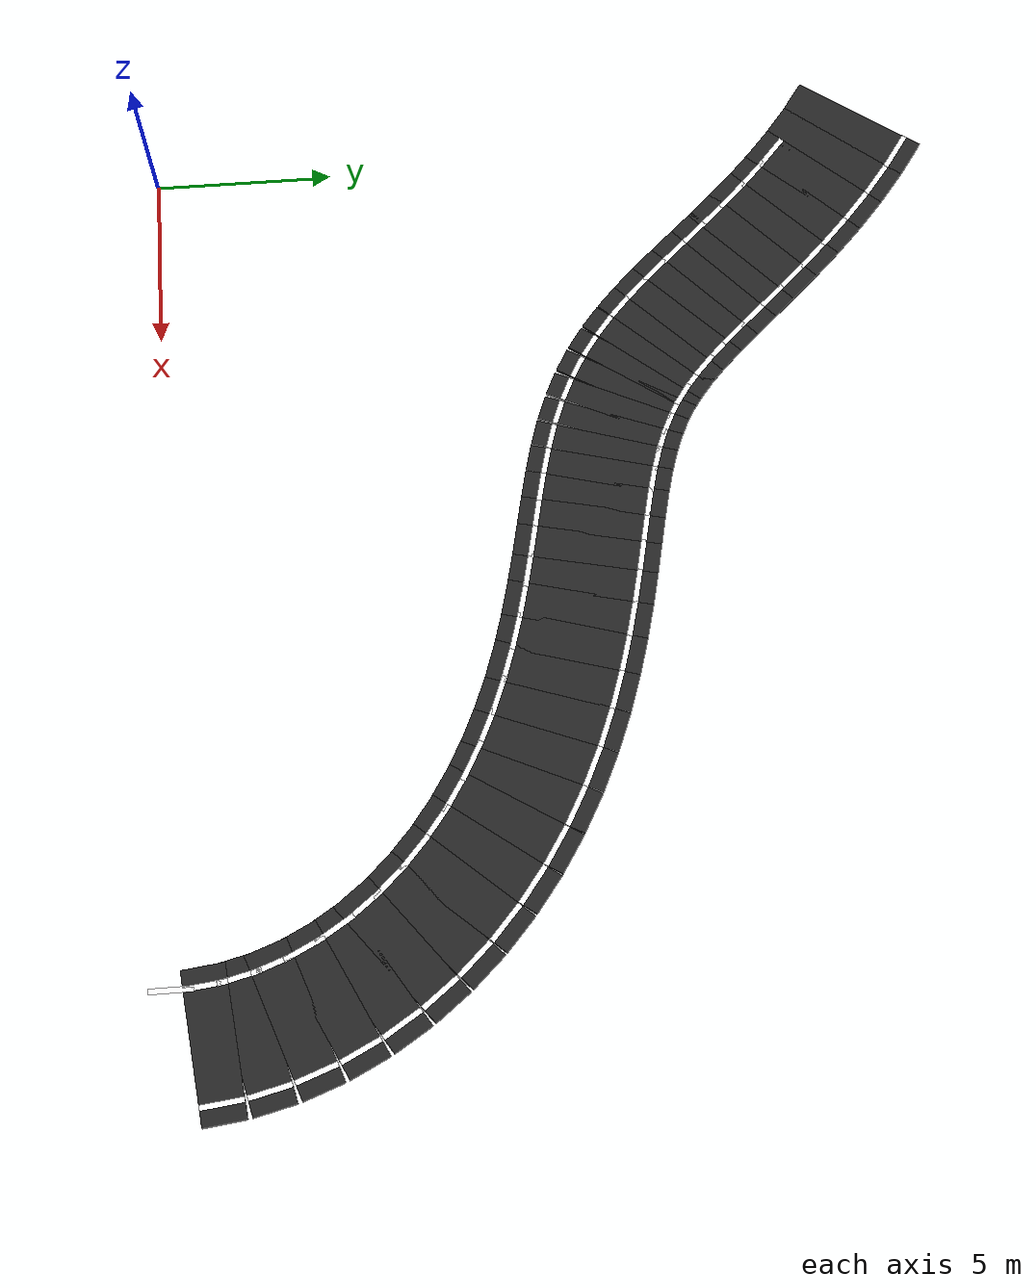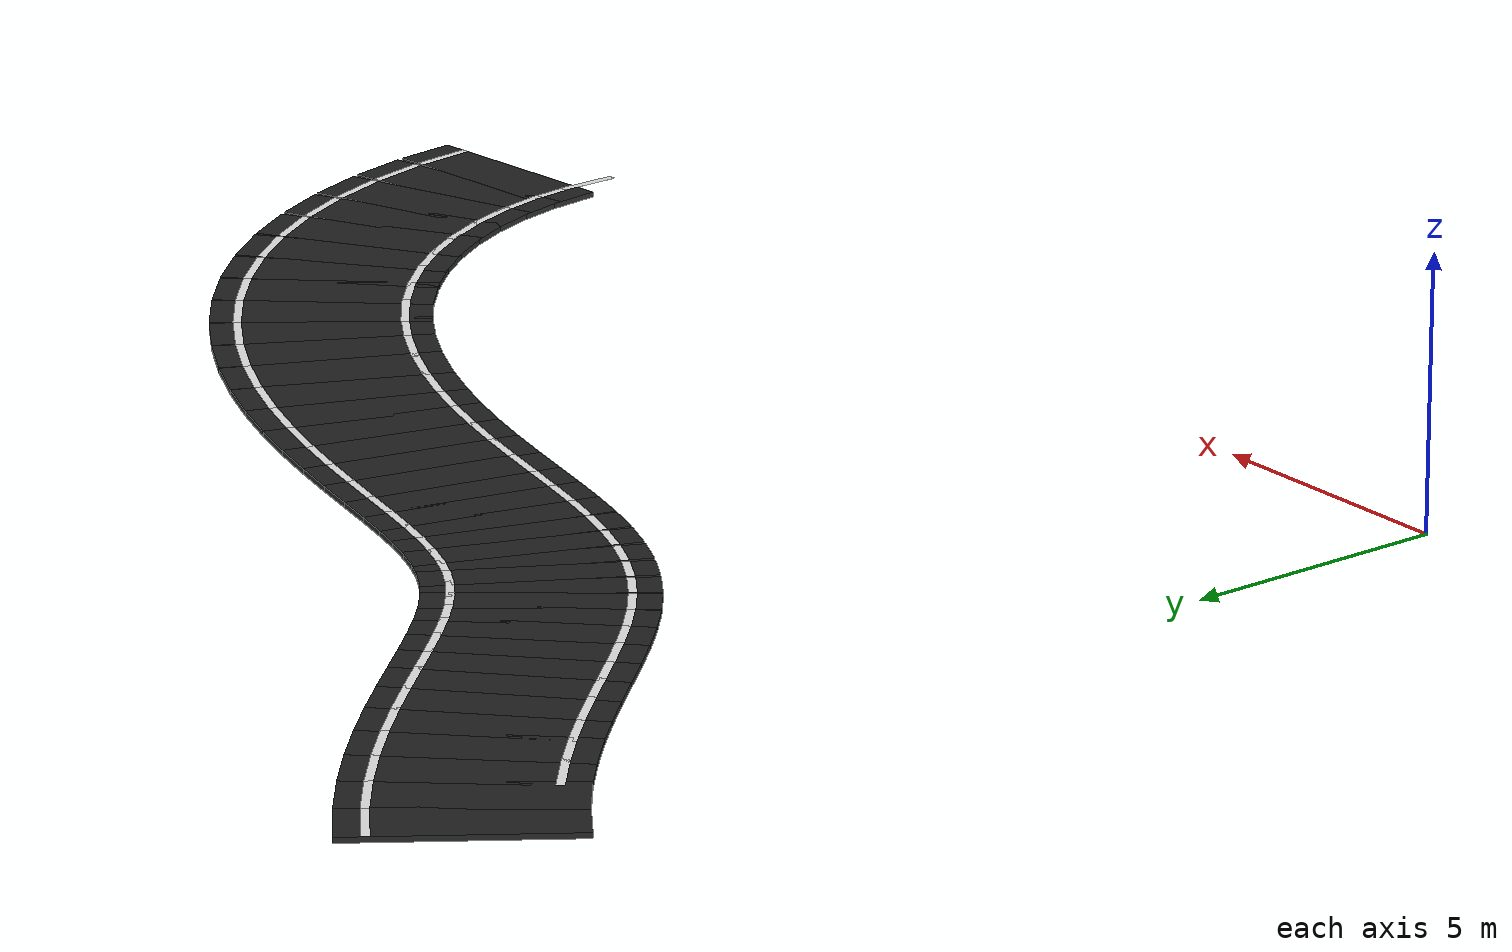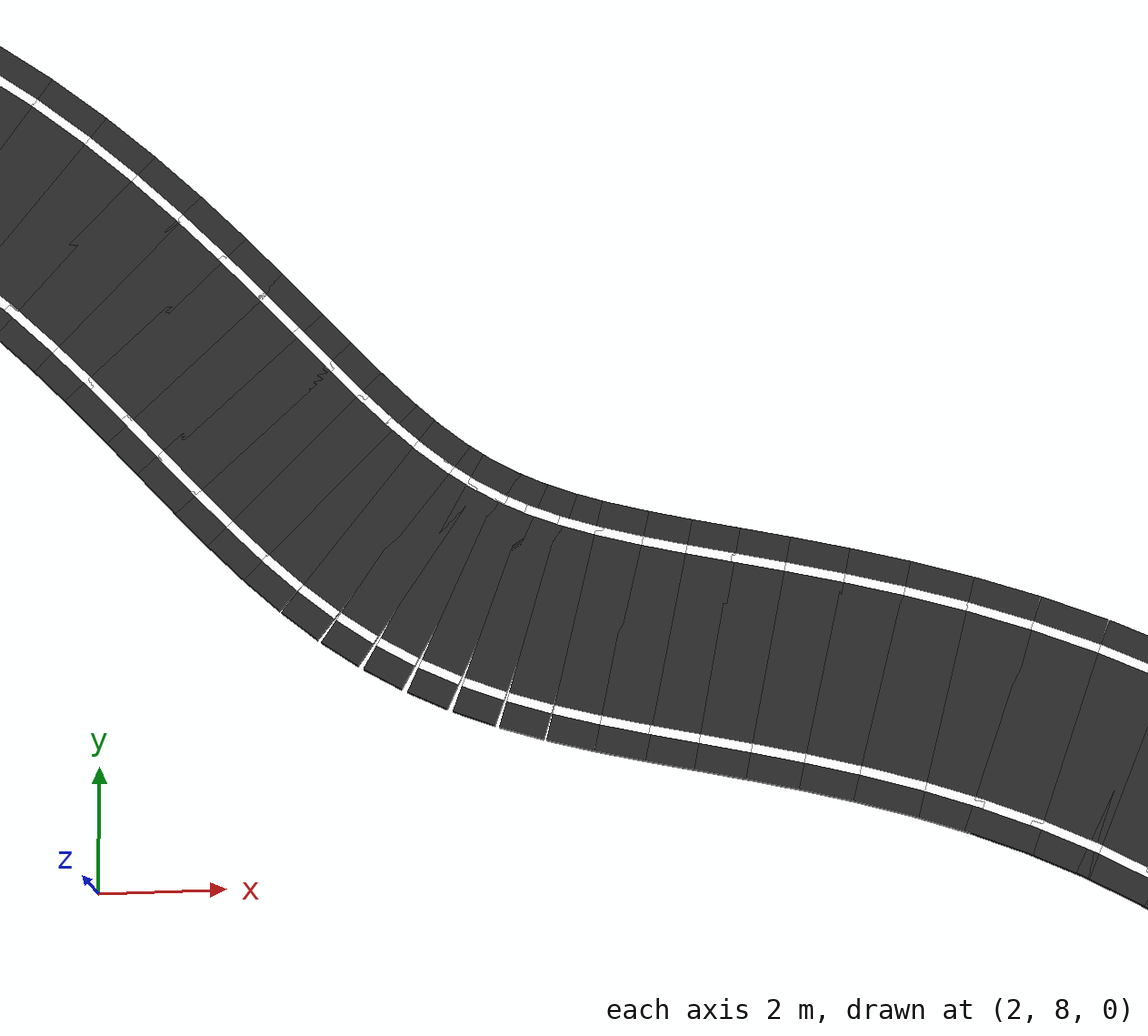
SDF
<sdf version="1.9">
 <world name="curved_race_track">
  <model name="race_track">
   <static>true</static>
   <link name="left_line_0">
    <pose>23.5 9.184850993605148e-17 0.101 0 0 1.5707963267948966</pose>
    <visual name="v">
     <geometry><box><size>1.1517413086948718 0.15 0.001</size></box></geometry>
     <material><ambient>1 1 1 1</ambient><emissive>0.3 0.3 0.3 1</emissive></material>
    </visual>
   </link>
   <link name="asphalt_1">
    <pose>24.93867884277719 1.0452403330434594 0.05 0 0 1.6878610084876453</pose>
    <visual name="v">
     <geometry><box><size>1.1545797828012336 4.0 0.1</size></box></geometry>
     <material><ambient>0.15 0.15 0.15 1</ambient><diffuse>0.15 0.15 0.15 1</diffuse></material>
    </visual>
    <collision name="c"><geometry><box><size>1.1545797828012336 4.0 0.1</size></box></geometry></collision>
   </link>
   <link name="left_line_1">
    <pose>23.448945215197284 0.8700441034675652 0.101 0 0 1.6878610084876453</pose>
    <visual name="v">
     <geometry><box><size>1.1545797828012336 0.15 0.001</size></box></geometry>
     <material><ambient>1 1 1 1</ambient><emissive>0.3 0.3 0.3 1</emissive></material>
    </visual>
   </link>
   <link name="right_line_1">
    <pose>26.428412470357095 1.2204365626193536 0.101 0 0 1.6878610084876453</pose>
    <visual name="v">
     <geometry><box><size>1.1545797828012336 0.15 0.001</size></box></geometry>
     <material><ambient>1 1 1 1</ambient><emissive>0.3 0.3 0.3 1</emissive></material>
    </visual>
   </link>
   <link name="asphalt_2">
    <pose>24.755788203260053 2.0788016167025125 0.05 0 0 1.8036160374220453</pose>
    <visual name="v">
     <geometry><box><size>1.1599233334616188 4.0 0.1</size></box></geometry>
     <material><ambient>0.15 0.15 0.15 1</ambient><diffuse>0.15 0.15 0.15 1</diffuse></material>
    </visual>
    <collision name="c"><geometry><box><size>1.1599233334616188 4.0 0.1</size></box></geometry></collision>
   </link>
   <link name="left_line_2">
    <pose>23.29625866148592 1.7327185100813123 0.101 0 0 1.8036160374220453</pose>
    <visual name="v">
     <geometry><box><size>1.1599233334616188 0.15 0.001</size></box></geometry>
     <material><ambient>1 1 1 1</ambient><emissive>0.3 0.3 0.3 1</emissive></material>
    </visual>
   </link>
   <link name="right_line_2">
    <pose>26.215317745034188 2.4248847233237125 0.101 0 0 1.8036160374220453</pose>
    <visual name="v">
     <geometry><box><size>1.1599233334616188 0.15 0.001</size></box></geometry>
     <material><ambient>1 1 1 1</ambient><emissive>0.3 0.3 0.3 1</emissive></material>
    </visual>
   </link>
   <link name="asphalt_3">
    <pose>24.454518629220797 3.0893241386282364 0.05 0 0 1.9168424924672245</pose>
    <visual name="v">
     <geometry><box><size>1.1671380173277104 4.0 0.1</size></box></geometry>
     <material><ambient>0.15 0.15 0.15 1</ambient><diffuse>0.15 0.15 0.15 1</diffuse></material>
    </visual>
    <collision name="c"><geometry><box><size>1.1671380173277104 4.0 0.1</size></box></geometry></collision>
   </link>
   <link name="left_line_3">
    <pose>23.043436937324422 2.580552619383238 0.101 0 0 1.9168424924672245</pose>
    <visual name="v">
     <geometry><box><size>1.1671380173277104 0.15 0.001</size></box></geometry>
     <material><ambient>1 1 1 1</ambient><emissive>0.3 0.3 0.3 1</emissive></material>
    </visual>
   </link>
   <link name="right_line_3">
    <pose>25.86560032111717 3.598095657873235 0.101 0 0 1.9168424924672245</pose>
    <visual name="v">
     <geometry><box><size>1.1671380173277104 0.15 0.001</size></box></geometry>
     <material><ambient>1 1 1 1</ambient><emissive>0.3 0.3 0.3 1</emissive></material>
    </visual>
   </link>
   <link name="asphalt_4">
    <pose>24.0400953103184 4.066077768171364 0.05 0 0 2.0264843342093304</pose>
    <visual name="v">
     <geometry><box><size>1.1753487668691223 4.0 0.1</size></box></geometry>
     <material><ambient>0.15 0.15 0.15 1</ambient><diffuse>0.15 0.15 0.15 1</diffuse></material>
    </visual>
    <collision name="c"><geometry><box><size>1.1753487668691223 4.0 0.1</size></box></geometry></collision>
   </link>
   <link name="left_line_4">
    <pose>22.693157616906884 3.4059574381804865 0.101 0 0 2.0264843342093304</pose>
    <visual name="v">
     <geometry><box><size>1.1753487668691223 0.15 0.001</size></box></geometry>
     <material><ambient>1 1 1 1</ambient><emissive>0.3 0.3 0.3 1</emissive></material>
    </visual>
   </link>
   <link name="right_line_4">
    <pose>25.387033003729915 4.726198098162241 0.101 0 0 2.0264843342093304</pose>
    <visual name="v">
     <geometry><box><size>1.1753487668691223 0.15 0.001</size></box></geometry>
     <material><ambient>1 1 1 1</ambient><emissive>0.3 0.3 0.3 1</emissive></material>
    </visual>
   </link>
   <link name="asphalt_5">
    <pose>23.51964217467976 4.999254272359171 0.05 0 0 2.1316897090092386</pose>
    <visual name="v">
     <geometry><box><size>1.1835150671737338 4.0 0.1</size></box></geometry>
     <material><ambient>0.15 0.15 0.15 1</ambient><diffuse>0.15 0.15 0.15 1</diffuse></material>
    </visual>
    <collision name="c"><geometry><box><size>1.1835150671737338 4.0 0.1</size></box></geometry></collision>
   </link>
   <link name="left_line_5">
    <pose>22.249471843683427 4.201339909625511 0.101 0 0 2.1316897090092386</pose>
    <visual name="v">
     <geometry><box><size>1.1835150671737338 0.15 0.001</size></box></geometry>
     <material><ambient>1 1 1 1</ambient><emissive>0.3 0.3 0.3 1</emissive></material>
    </visual>
   </link>
   <link name="right_line_5">
    <pose>24.789812505676093 5.797168635092832 0.101 0 0 2.1316897090092386</pose>
    <visual name="v">
     <geometry><box><size>1.1835150671737338 0.15 0.001</size></box></geometry>
     <material><ambient>1 1 1 1</ambient><emissive>0.3 0.3 0.3 1</emissive></material>
    </visual>
   </link>
   <link name="asphalt_6">
    <pose>22.901996910129775 5.880233371797846 0.05 0 0 2.2318184825836376</pose>
    <visual name="v">
     <geometry><box><size>1.190511819055715 4.0 0.1</size></box></geometry>
     <material><ambient>0.15 0.15 0.15 1</ambient><diffuse>0.15 0.15 0.15 1</diffuse></material>
    </visual>
    <collision name="c"><geometry><box><size>1.190511819055715 4.0 0.1</size></box></geometry></collision>
   </link>
   <link name="left_line_6">
    <pose>21.717949233168476 4.959347331789338 0.101 0 0 2.2318184825836376</pose>
    <visual name="v">
     <geometry><box><size>1.190511819055715 0.15 0.001</size></box></geometry>
     <material><ambient>1 1 1 1</ambient><emissive>0.3 0.3 0.3 1</emissive></material>
    </visual>
   </link>
   <link name="right_line_6">
    <pose>24.086044587091074 6.801119411806354 0.101 0 0 2.2318184825836376</pose>
    <visual name="v">
     <geometry><box><size>1.190511819055715 0.15 0.001</size></box></geometry>
     <material><ambient>1 1 1 1</ambient><emissive>0.3 0.3 0.3 1</emissive></material>
    </visual>
   </link>
   <link name="asphalt_7">
    <pose>22.19748201854685 6.701814944752323 0.05 0 0 2.326421200263377</pose>
    <visual name="v">
     <geometry><box><size>1.1952063372059136 4.0 0.1</size></box></geometry>
     <material><ambient>0.15 0.15 0.15 1</ambient><diffuse>0.15 0.15 0.15 1</diffuse></material>
    </visual>
    <collision name="c"><geometry><box><size>1.1952063372059136 4.0 0.1</size></box></geometry></collision>
   </link>
   <link name="left_line_7">
    <pose>21.105717245066373 5.673199526149663 0.101 0 0 2.326421200263377</pose>
    <visual name="v">
     <geometry><box><size>1.1952063372059136 0.15 0.001</size></box></geometry>
     <material><ambient>1 1 1 1</ambient><emissive>0.3 0.3 0.3 1</emissive></material>
    </visual>
   </link>
   <link name="right_line_7">
    <pose>23.289246792027328 7.730430363354984 0.101 0 0 2.326421200263377</pose>
    <visual name="v">
     <geometry><box><size>1.1952063372059136 0.15 0.001</size></box></geometry>
     <material><ambient>1 1 1 1</ambient><emissive>0.3 0.3 0.3 1</emissive></material>
    </visual>
   </link>
   <link name="asphalt_8">
    <pose>21.417638223340855 7.458410741258788 0.05 0 0 2.415198938088985</pose>
    <visual name="v">
     <geometry><box><size>1.1965258177165006 4.0 0.1</size></box></geometry>
     <material><ambient>0.15 0.15 0.15 1</ambient><diffuse>0.15 0.15 0.15 1</diffuse></material>
    </visual>
    <collision name="c"><geometry><box><size>1.1965258177165006 4.0 0.1</size></box></geometry></collision>
   </link>
   <link name="left_line_8">
    <pose>20.421371233059197 6.337049031516955 0.101 0 0 2.415198938088985</pose>
    <visual name="v">
     <geometry><box><size>1.1965258177165006 0.15 0.001</size></box></geometry>
     <material><ambient>1 1 1 1</ambient><emissive>0.3 0.3 0.3 1</emissive></material>
    </visual>
   </link>
   <link name="right_line_8">
    <pose>22.413905213622513 8.579772451000622 0.101 0 0 2.415198938088985</pose>
    <visual name="v">
     <geometry><box><size>1.1965258177165006 0.15 0.001</size></box></geometry>
     <material><ambient>1 1 1 1</ambient><emissive>0.3 0.3 0.3 1</emissive></material>
    </visual>
   </link>
   <link name="asphalt_9">
    <pose>20.57492758514184 8.146190109942514 0.05 0 0 2.4979537496442656</pose>
    <visual name="v">
     <geometry><box><size>1.1935129791848818 4.0 0.1</size></box></geometry>
     <material><ambient>0.15 0.15 0.15 1</ambient><diffuse>0.15 0.15 0.15 1</diffuse></material>
    </visual>
    <collision name="c"><geometry><box><size>1.1935129791848818 4.0 0.1</size></box></geometry></collision>
   </link>
   <link name="left_line_9">
    <pose>19.674762239504048 6.946314136971644 0.101 0 0 2.4979537496442656</pose>
    <visual name="v">
     <geometry><box><size>1.1935129791848818 0.15 0.001</size></box></geometry>
     <material><ambient>1 1 1 1</ambient><emissive>0.3 0.3 0.3 1</emissive></material>
    </visual>
   </link>
   <link name="right_line_9">
    <pose>21.47509293077963 9.346066082913385 0.101 0 0 2.4979537496442656</pose>
    <visual name="v">
     <geometry><box><size>1.1935129791848818 0.15 0.001</size></box></geometry>
     <material><ambient>1 1 1 1</ambient><emissive>0.3 0.3 0.3 1</emissive></material>
    </visual>
   </link>
   <link name="asphalt_10">
    <pose>19.682414510580028 8.7631755362432 0.05 0 0 2.574537075790494</pose>
    <visual name="v">
     <geometry><box><size>1.1853701260313456 4.0 0.1</size></box></geometry>
     <material><ambient>0.15 0.15 0.15 1</ambient><diffuse>0.15 0.15 0.15 1</diffuse></material>
    </visual>
    <collision name="c"><geometry><box><size>1.1853701260313456 4.0 0.1</size></box></geometry></collision>
   </link>
   <link name="left_line_10">
    <pose>18.876688308791273 7.49794619428536 0.101 0 0 2.574537075790494</pose>
    <visual name="v">
     <geometry><box><size>1.1853701260313456 0.15 0.001</size></box></geometry>
     <material><ambient>1 1 1 1</ambient><emissive>0.3 0.3 0.3 1</emissive></material>
    </visual>
   </link>
   <link name="right_line_10">
    <pose>20.488140712368782 10.028404878201039 0.101 0 0 2.574537075790494</pose>
    <visual name="v">
     <geometry><box><size>1.1853701260313456 0.15 0.001</size></box></geometry>
     <material><ambient>1 1 1 1</ambient><emissive>0.3 0.3 0.3 1</emissive></material>
    </visual>
   </link>
   <link name="asphalt_11">
    <pose>18.75343344040603 9.309285205632204 0.05 0 0 2.6448003074046262</pose>
    <visual name="v">
     <geometry><box><size>1.1714934133066277 4.0 0.1</size></box></geometry>
     <material><ambient>0.15 0.15 0.15 1</ambient><diffuse>0.15 0.15 0.15 1</diffuse></material>
    </visual>
    <collision name="c"><geometry><box><size>1.1714934133066277 4.0 0.1</size></box></geometry></collision>
   </link>
   <link name="left_line_11">
    <pose>18.038521296456896 7.990611392123324 0.101 0 0 2.6448003074046262</pose>
    <visual name="v">
     <geometry><box><size>1.1714934133066277 0.15 0.001</size></box></geometry>
     <material><ambient>1 1 1 1</ambient><emissive>0.3 0.3 0.3 1</emissive></material>
    </visual>
   </link>
   <link name="right_line_11">
    <pose>19.468345584355166 10.627959019141084 0.101 0 0 2.6448003074046262</pose>
    <visual name="v">
     <geometry><box><size>1.1714934133066277 0.15 0.001</size></box></geometry>
     <material><ambient>1 1 1 1</ambient><emissive>0.3 0.3 0.3 1</emissive></material>
    </visual>
   </link>
   <link name="asphalt_12">
    <pose>17.801252359412082 9.786321299444317 0.05 0 0 2.708548881947828</pose>
    <visual name="v">
     <geometry><box><size>1.1514998059889057 4.0 0.1</size></box></geometry>
     <material><ambient>0.15 0.15 0.15 1</ambient><diffuse>0.15 0.15 0.15 1</diffuse></material>
    </visual>
    <collision name="c"><geometry><box><size>1.1514998059889057 4.0 0.1</size></box></geometry></collision>
   </link>
   <link name="left_line_12">
    <pose>17.171799032504463 8.42478227714458 0.101 0 0 2.708548881947828</pose>
    <visual name="v">
     <geometry><box><size>1.1514998059889057 0.15 0.001</size></box></geometry>
     <material><ambient>1 1 1 1</ambient><emissive>0.3 0.3 0.3 1</emissive></material>
    </visual>
   </link>
   <link name="right_line_12">
    <pose>18.4307056863197 11.147860321744055 0.101 0 0 2.708548881947828</pose>
    <visual name="v">
     <geometry><box><size>1.1514998059889057 0.15 0.001</size></box></geometry>
     <material><ambient>1 1 1 1</ambient><emissive>0.3 0.3 0.3 1</emissive></material>
    </visual>
   </link>
   <link name="asphalt_13">
    <pose>16.838741371798708 10.197904262218827 0.05 0 0 2.7654993891998405</pose>
    <visual name="v">
     <geometry><box><size>1.1252494421990376 4.0 0.1</size></box></geometry>
     <material><ambient>0.15 0.15 0.15 1</ambient><diffuse>0.15 0.15 0.15 1</diffuse></material>
    </visual>
    <collision name="c"><geometry><box><size>1.1252494421990376 4.0 0.1</size></box></geometry></collision>
   </link>
   <link name="left_line_13">
    <pose>16.287806970536273 8.802744312426116 0.101 0 0 2.7654993891998405</pose>
    <visual name="v">
     <geometry><box><size>1.1252494421990376 0.15 0.001</size></box></geometry>
     <material><ambient>1 1 1 1</ambient><emissive>0.3 0.3 0.3 1</emissive></material>
    </visual>
   </link>
   <link name="right_line_13">
    <pose>17.389675773061143 11.593064212011539 0.101 0 0 2.7654993891998405</pose>
    <visual name="v">
     <geometry><box><size>1.1252494421990376 0.15 0.001</size></box></geometry>
     <material><ambient>1 1 1 1</ambient><emissive>0.3 0.3 0.3 1</emissive></material>
    </visual>
   </link>
   <link name="asphalt_14">
    <pose>15.878055429048832 10.54935480497764 0.05 0 0 2.8152382774725226</pose>
    <visual name="v">
     <geometry><box><size>1.092866102675976 4.0 0.1</size></box></geometry>
     <material><ambient>0.15 0.15 0.15 1</ambient><diffuse>0.15 0.15 0.15 1</diffuse></material>
    </visual>
    <collision name="c"><geometry><box><size>1.092866102675976 4.0 0.1</size></box></geometry></collision>
   </link>
   <link name="left_line_14">
    <pose>15.39716747687417 9.12852871517873 0.101 0 0 2.8152382774725226</pose>
    <visual name="v">
     <geometry><box><size>1.092866102675976 0.15 0.001</size></box></geometry>
     <material><ambient>1 1 1 1</ambient><emissive>0.3 0.3 0.3 1</emissive></material>
    </visual>
   </link>
   <link name="right_line_14">
    <pose>16.358943381223494 11.970180894776549 0.101 0 0 2.8152382774725226</pose>
    <visual name="v">
     <geometry><box><size>1.092866102675976 0.15 0.001</size></box></geometry>
     <material><ambient>1 1 1 1</ambient><emissive>0.3 0.3 0.3 1</emissive></material>
    </visual>
   </link>
   <link name="asphalt_15">
    <pose>14.930339887498949 10.847526885842763 0.05 0 0 2.8571809337977716</pose>
    <visual name="v">
     <geometry><box><size>1.0547584072677971 4.0 0.1</size></box></geometry>
     <material><ambient>0.15 0.15 0.15 1</ambient><diffuse>0.15 0.15 0.15 1</diffuse></material>
    </visual>
    <collision name="c"><geometry><box><size>1.0547584072677971 4.0 0.1</size></box></geometry></collision>
   </link>
   <link name="left_line_15">
    <pose>14.509450608417962 9.407786556910255 0.101 0 0 2.8571809337977716</pose>
    <visual name="v">
     <geometry><box><size>1.0547584072677971 0.15 0.001</size></box></geometry>
     <material><ambient>1 1 1 1</ambient><emissive>0.3 0.3 0.3 1</emissive></material>
    </visual>
   </link>
   <link name="right_line_15">
    <pose>15.351229166579936 12.287267214775271 0.101 0 0 2.8571809337977716</pose>
    <visual name="v">
     <geometry><box><size>1.0547584072677971 0.15 0.001</size></box></geometry>
     <material><ambient>1 1 1 1</ambient><emissive>0.3 0.3 0.3 1</emissive></material>
    </visual>
   </link>
   <link name="asphalt_16">
    <pose>14.005466921194902 11.100596296345627 0.05 0 0 2.8905314485385714</pose>
    <visual name="v">
     <geometry><box><size>1.0116441791363924 4.0 0.1</size></box></geometry>
     <material><ambient>0.15 0.15 0.15 1</ambient><diffuse>0.15 0.15 0.15 1</diffuse></material>
    </visual>
    <collision name="c"><geometry><box><size>1.0116441791363924 4.0 0.1</size></box></geometry></collision>
   </link>
   <link name="left_line_16">
    <pose>13.632818869430034 9.647622301562565 0.101 0 0 2.8905314485385714</pose>
    <visual name="v">
     <geometry><box><size>1.0116441791363924 0.15 0.001</size></box></geometry>
     <material><ambient>1 1 1 1</ambient><emissive>0.3 0.3 0.3 1</emissive></material>
    </visual>
   </link>
   <link name="right_line_16">
    <pose>14.37811497295977 12.553570291128688 0.101 0 0 2.8905314485385714</pose>
    <visual name="v">
     <geometry><box><size>1.0116441791363924 0.15 0.001</size></box></geometry>
     <material><ambient>1 1 1 1</ambient><emissive>0.3 0.3 0.3 1</emissive></material>
    </visual>
   </link>
   <link name="asphalt_17">
    <pose>13.111809940610991 11.317810739755817 0.05 0 0 2.9142471013519193</pose>
    <visual name="v">
     <geometry><box><size>0.964579854375915 4.0 0.1</size></box></geometry>
     <material><ambient>0.15 0.15 0.15 1</ambient><diffuse>0.15 0.15 0.15 1</diffuse></material>
    </visual>
    <collision name="c"><geometry><box><size>0.964579854375915 4.0 0.1</size></box></geometry></collision>
   </link>
   <link name="left_line_17">
    <pose>12.773721675392794 9.856408562077903 0.101 0 0 2.9142471013519193</pose>
    <visual name="v">
     <geometry><box><size>0.964579854375915 0.15 0.001</size></box></geometry>
     <material><ambient>1 1 1 1</ambient><emissive>0.3 0.3 0.3 1</emissive></material>
    </visual>
   </link>
   <link name="right_line_17">
    <pose>13.449898205829188 12.779212917433732 0.101 0 0 2.9142471013519193</pose>
    <visual name="v">
     <geometry><box><size>0.964579854375915 0.15 0.001</size></box></geometry>
     <material><ambient>1 1 1 1</ambient><emissive>0.3 0.3 0.3 1</emissive></material>
    </visual>
   </link>
   <link name="asphalt_18">
    <pose>12.25606209396532 11.509208381413854 0.05 0 0 2.9270192034203104</pose>
    <visual name="v">
     <geometry><box><size>0.9149951303041115 4.0 0.1</size></box></geometry>
     <material><ambient>0.15 0.15 0.15 1</ambient><diffuse>0.15 0.15 0.15 1</diffuse></material>
    </visual>
    <collision name="c"><geometry><box><size>0.9149951303041115 4.0 0.1</size></box></geometry></collision>
   </link>
   <link name="left_line_18">
    <pose>11.936666074281328 10.043607418460423 0.101 0 0 2.9270192034203104</pose>
    <visual name="v">
     <geometry><box><size>0.9149951303041115 0.15 0.001</size></box></geometry>
     <material><ambient>1 1 1 1</ambient><emissive>0.3 0.3 0.3 1</emissive></material>
    </visual>
   </link>
   <link name="right_line_18">
    <pose>12.575458113649313 12.974809344367285 0.101 0 0 2.9270192034203104</pose>
    <visual name="v">
     <geometry><box><size>0.9149951303041115 0.15 0.001</size></box></geometry>
     <material><ambient>1 1 1 1</ambient><emissive>0.3 0.3 0.3 1</emissive></material>
    </visual>
   </link>
   <link name="asphalt_19">
    <pose>11.44310368531177 11.685312749645956 0.05 0 0 2.9272959887765153</pose>
    <visual name="v">
     <geometry><box><size>0.8647287213029914 4.0 0.1</size></box></geometry>
     <material><ambient>0.15 0.15 0.15 1</ambient><diffuse>0.15 0.15 0.15 1</diffuse></material>
    </visual>
    <collision name="c"><geometry><box><size>0.8647287213029914 4.0 0.1</size></box></geometry></collision>
   </link>
   <link name="left_line_19">
    <pose>11.12411333474167 10.219623438692517 0.101 0 0 2.9272959887765153</pose>
    <visual name="v">
     <geometry><box><size>0.8647287213029914 0.15 0.001</size></box></geometry>
     <material><ambient>1 1 1 1</ambient><emissive>0.3 0.3 0.3 1</emissive></material>
    </visual>
   </link>
   <link name="right_line_19">
    <pose>11.762094035881871 13.151002060599394 0.101 0 0 2.9272959887765153</pose>
    <visual name="v">
     <geometry><box><size>0.8647287213029914 0.15 0.001</size></box></geometry>
     <material><ambient>1 1 1 1</ambient><emissive>0.3 0.3 0.3 1</emissive></material>
    </visual>
   </link>
   <link name="asphalt_20">
    <pose>10.675921967173517 11.856812544082802 0.05 0 0 2.9133960009583806</pose>
    <visual name="v">
     <geometry><box><size>0.8160515710137843 4.0 0.1</size></box></geometry>
     <material><ambient>0.15 0.15 0.15 1</ambient><diffuse>0.15 0.15 0.15 1</diffuse></material>
    </visual>
    <collision name="c"><geometry><box><size>0.8160515710137843 4.0 0.1</size></box></geometry></collision>
   </link>
   <link name="left_line_20">
    <pose>10.336590024587752 10.395698642725016 0.101 0 0 2.9133960009583806</pose>
    <visual name="v">
     <geometry><box><size>0.8160515710137843 0.15 0.001</size></box></geometry>
     <material><ambient>1 1 1 1</ambient><emissive>0.3 0.3 0.3 1</emissive></material>
    </visual>
   </link>
   <link name="right_line_20">
    <pose>11.015253909759283 13.317926445440587 0.101 0 0 2.9133960009583806</pose>
    <visual name="v">
     <geometry><box><size>0.8160515710137843 0.15 0.001</size></box></geometry>
     <material><ambient>1 1 1 1</ambient><emissive>0.3 0.3 0.3 1</emissive></material>
    </visual>
   </link>
   <link name="asphalt_21">
    <pose>9.955585293788852 12.034235346982369 0.05 0 0 2.88378823026031</pose>
    <visual name="v">
     <geometry><box><size>0.7716463724455257 4.0 0.1</size></box></geometry>
     <material><ambient>0.15 0.15 0.15 1</ambient><diffuse>0.15 0.15 0.15 1</diffuse></material>
    </visual>
    <collision name="c"><geometry><box><size>0.7716463724455257 4.0 0.1</size></box></geometry></collision>
   </link>
   <link name="left_line_21">
    <pose>9.573148067782697 10.583807214269576 0.101 0 0 2.88378823026031</pose>
    <visual name="v">
     <geometry><box><size>0.7716463724455257 0.15 0.001</size></box></geometry>
     <material><ambient>1 1 1 1</ambient><emissive>0.3 0.3 0.3 1</emissive></material>
    </visual>
   </link>
   <link name="right_line_21">
    <pose>10.338022519795008 13.484663479695161 0.101 0 0 2.88378823026031</pose>
    <visual name="v">
     <geometry><box><size>0.7716463724455257 0.15 0.001</size></box></geometry>
     <material><ambient>1 1 1 1</ambient><emissive>0.3 0.3 0.3 1</emissive></material>
    </visual>
   </link>
   <link name="asphalt_22">
    <pose>9.281272095308069 12.227624420056955 0.05 0 0 2.837624258825484</pose>
    <visual name="v">
     <geometry><box><size>0.7344883325544713 4.0 0.1</size></box></geometry>
     <material><ambient>0.15 0.15 0.15 1</ambient><diffuse>0.15 0.15 0.15 1</diffuse></material>
    </visual>
    <collision name="c"><geometry><box><size>0.7344883325544713 4.0 0.1</size></box></geometry></collision>
   </link>
   <link name="left_line_22">
    <pose>8.832308562178943 10.796390076589677 0.101 0 0 2.837624258825484</pose>
    <visual name="v">
     <geometry><box><size>0.7344883325544713 0.15 0.001</size></box></geometry>
     <material><ambient>1 1 1 1</ambient><emissive>0.3 0.3 0.3 1</emissive></material>
    </visual>
   </link>
   <link name="right_line_22">
    <pose>9.730235628437194 13.658858763524233 0.101 0 0 2.837624258825484</pose>
    <visual name="v">
     <geometry><box><size>0.7344883325544713 0.15 0.001</size></box></geometry>
     <material><ambient>1 1 1 1</ambient><emissive>0.3 0.3 0.3 1</emissive></material>
    </visual>
   </link>
   <link name="asphalt_23">
    <pose>8.650353596254707 12.446227698969087 0.05 0 0 2.7755346064100994</pose>
    <visual name="v">
     <geometry><box><size>0.7075590026083342 4.0 0.1</size></box></geometry>
     <material><ambient>0.15 0.15 0.15 1</ambient><diffuse>0.15 0.15 0.15 1</diffuse></material>
    </visual>
    <collision name="c"><geometry><box><size>0.7075590026083342 4.0 0.1</size></box></geometry></collision>
   </link>
   <link name="left_line_23">
    <pose>8.113447433993308 11.045609345196105 0.101 0 0 2.7755346064100994</pose>
    <visual name="v">
     <geometry><box><size>0.7075590026083342 0.15 0.001</size></box></geometry>
     <material><ambient>1 1 1 1</ambient><emissive>0.3 0.3 0.3 1</emissive></material>
    </visual>
   </link>
   <link name="right_line_23">
    <pose>9.187259758516106 13.84684605274207 0.101 0 0 2.7755346064100994</pose>
    <visual name="v">
     <geometry><box><size>0.7075590026083342 0.15 0.001</size></box></geometry>
     <material><ambient>1 1 1 1</ambient><emissive>0.3 0.3 0.3 1</emissive></material>
    </visual>
   </link>
   <link name="asphalt_24">
    <pose>8.058527696295526 12.69820777193578 0.05 0 0 2.7004655658699304</pose>
    <visual name="v">
     <geometry><box><size>0.6933651874997658 4.0 0.1</size></box></geometry>
     <material><ambient>0.15 0.15 0.15 1</ambient><diffuse>0.15 0.15 0.15 1</diffuse></material>
    </visual>
    <collision name="c"><geometry><box><size>0.6933651874997658 4.0 0.1</size></box></geometry></collision>
   </link>
   <link name="left_line_24">
    <pose>7.418089303098337 11.341801245661667 0.101 0 0 2.7004655658699304</pose>
    <visual name="v">
     <geometry><box><size>0.6933651874997658 0.15 0.001</size></box></geometry>
     <material><ambient>1 1 1 1</ambient><emissive>0.3 0.3 0.3 1</emissive></material>
    </visual>
   </link>
   <link name="right_line_24">
    <pose>8.698966089492716 14.054614298209891 0.101 0 0 2.7004655658699304</pose>
    <visual name="v">
     <geometry><box><size>0.6933651874997658 0.15 0.001</size></box></geometry>
     <material><ambient>1 1 1 1</ambient><emissive>0.3 0.3 0.3 1</emissive></material>
    </visual>
   </link>
   <link name="asphalt_25">
    <pose>7.500000000000002 12.990381056766578 0.05 0 0 2.6179938779914944</pose>
    <visual name="v">
     <geometry><box><size>0.6933651874997708 4.0 0.1</size></box></geometry>
     <material><ambient>0.15 0.15 0.15 1</ambient><diffuse>0.15 0.15 0.15 1</diffuse></material>
    </visual>
    <collision name="c"><geometry><box><size>0.6933651874997708 4.0 0.1</size></box></geometry></collision>
   </link>
   <link name="left_line_25">
    <pose>6.750000000000002 11.69134295108992 0.101 0 0 2.6179938779914944</pose>
    <visual name="v">
     <geometry><box><size>0.6933651874997708 0.15 0.001</size></box></geometry>
     <material><ambient>1 1 1 1</ambient><emissive>0.3 0.3 0.3 1</emissive></material>
    </visual>
   </link>
   <link name="right_line_25">
    <pose>8.250000000000002 14.289419162443236 0.101 0 0 2.6179938779914944</pose>
    <visual name="v">
     <geometry><box><size>0.6933651874997708 0.15 0.001</size></box></geometry>
     <material><ambient>1 1 1 1</ambient><emissive>0.3 0.3 0.3 1</emissive></material>
    </visual>
   </link>
   <link name="asphalt_26">
    <pose>6.967706664881618 13.327993588060306 0.05 0 0 2.535522190113058</pose>
    <visual name="v">
     <geometry><box><size>0.7075590026083323 4.0 0.1</size></box></geometry>
     <material><ambient>0.15 0.15 0.15 1</ambient><diffuse>0.15 0.15 0.15 1</diffuse></material>
    </visual>
    <collision name="c"><geometry><box><size>0.7075590026083323 4.0 0.1</size></box></geometry></collision>
   </link>
   <link name="left_line_26">
    <pose>6.113243351867827 12.095154406855597 0.101 0 0 2.535522190113058</pose>
    <visual name="v">
     <geometry><box><size>0.7075590026083323 0.15 0.001</size></box></geometry>
     <material><ambient>1 1 1 1</ambient><emissive>0.3 0.3 0.3 1</emissive></material>
    </visual>
   </link>
   <link name="right_line_26">
    <pose>7.822169977895409 14.560832769265014 0.101 0 0 2.535522190113058</pose>
    <visual name="v">
     <geometry><box><size>0.7075590026083323 0.15 0.001</size></box></geometry>
     <material><ambient>1 1 1 1</ambient><emissive>0.3 0.3 0.3 1</emissive></material>
    </visual>
   </link>
   <link name="asphalt_27">
    <pose>6.453572570465417 13.714539815559197 0.05 0 0 2.4604531495728894</pose>
    <visual name="v">
     <geometry><box><size>0.7344883325544705 4.0 0.1</size></box></geometry>
     <material><ambient>0.15 0.15 0.15 1</ambient><diffuse>0.15 0.15 0.15 1</diffuse></material>
    </visual>
    <collision name="c"><geometry><box><size>0.7344883325544705 4.0 0.1</size></box></geometry></collision>
   </link>
   <link name="left_line_27">
    <pose>5.509054576221975 12.549256262705924 0.101 0 0 2.4604531495728894</pose>
    <visual name="v">
     <geometry><box><size>0.7344883325544705 0.15 0.001</size></box></geometry>
     <material><ambient>1 1 1 1</ambient><emissive>0.3 0.3 0.3 1</emissive></material>
    </visual>
   </link>
   <link name="right_line_27">
    <pose>7.39809056470886 14.87982336841247 0.101 0 0 2.4604531495728894</pose>
    <visual name="v">
     <geometry><box><size>0.7344883325544705 0.15 0.001</size></box></geometry>
     <material><ambient>1 1 1 1</ambient><emissive>0.3 0.3 0.3 1</emissive></material>
    </visual>
   </link>
   <link name="asphalt_28">
    <pose>5.9487973280502535 14.151629624000888 0.05 0 0 2.3983634971575043</pose>
    <visual name="v">
     <geometry><box><size>0.7716463724455292 4.0 0.1</size></box></geometry>
     <material><ambient>0.15 0.15 0.15 1</ambient><diffuse>0.15 0.15 0.15 1</diffuse></material>
    </visual>
    <collision name="c"><geometry><box><size>0.7716463724455292 4.0 0.1</size></box></geometry></collision>
   </link>
   <link name="left_line_28">
    <pose>4.93379379440341 13.04719862720461 0.101 0 0 2.3983634971575043</pose>
    <visual name="v">
     <geometry><box><size>0.7716463724455292 0.15 0.001</size></box></geometry>
     <material><ambient>1 1 1 1</ambient><emissive>0.3 0.3 0.3 1</emissive></material>
    </visual>
   </link>
   <link name="right_line_28">
    <pose>6.963800861697097 15.256060620797166 0.101 0 0 2.3983634971575043</pose>
    <visual name="v">
     <geometry><box><size>0.7716463724455292 0.15 0.001</size></box></geometry>
     <material><ambient>1 1 1 1</ambient><emissive>0.3 0.3 0.3 1</emissive></material>
    </visual>
   </link>
   <link name="asphalt_29">
    <pose>5.444160878712943 14.638907447455095 0.05 0 0 2.352199525722679</pose>
    <visual name="v">
     <geometry><box><size>0.8160515710137811 4.0 0.1</size></box></geometry>
     <material><ambient>0.15 0.15 0.15 1</ambient><diffuse>0.15 0.15 0.15 1</diffuse></material>
    </visual>
    <collision name="c"><geometry><box><size>0.8160515710137811 4.0 0.1</size></box></geometry></collision>
   </link>
   <link name="left_line_29">
    <pose>4.379271882423116 13.582493028024517 0.101 0 0 2.352199525722679</pose>
    <visual name="v">
     <geometry><box><size>0.8160515710137811 0.15 0.001</size></box></geometry>
     <material><ambient>1 1 1 1</ambient><emissive>0.3 0.3 0.3 1</emissive></material>
    </visual>
   </link>
   <link name="right_line_29">
    <pose>6.509049875002771 15.695321866885672 0.101 0 0 2.352199525722679</pose>
    <visual name="v">
     <geometry><box><size>0.8160515710137811 0.15 0.001</size></box></geometry>
     <material><ambient>1 1 1 1</ambient><emissive>0.3 0.3 0.3 1</emissive></material>
    </visual>
   </link>
   <link name="asphalt_30">
    <pose>4.930339887498949 15.174025904434004 0.05 0 0 2.322591755024608</pose>
    <visual name="v">
     <geometry><box><size>0.8647287213029927 4.0 0.1</size></box></geometry>
     <material><ambient>0.15 0.15 0.15 1</ambient><diffuse>0.15 0.15 0.15 1</diffuse></material>
    </visual>
    <collision name="c"><geometry><box><size>0.8647287213029927 4.0 0.1</size></box></geometry></collision>
   </link>
   <link name="left_line_30">
    <pose>3.8346441023933986 14.149598871160315 0.101 0 0 2.322591755024608</pose>
    <visual name="v">
     <geometry><box><size>0.8647287213029927 0.15 0.001</size></box></geometry>
     <material><ambient>1 1 1 1</ambient><emissive>0.3 0.3 0.3 1</emissive></material>
    </visual>
   </link>
   <link name="right_line_30">
    <pose>6.0260356726044995 16.198452937707692 0.101 0 0 2.322591755024608</pose>
    <visual name="v">
     <geometry><box><size>0.8647287213029927 0.15 0.001</size></box></geometry>
     <material><ambient>1 1 1 1</ambient><emissive>0.3 0.3 0.3 1</emissive></material>
    </visual>
   </link>
   <link name="asphalt_31">
    <pose>4.398225849703701 15.7526748644423 0.05 0 0 2.3086917672064735</pose>
    <visual name="v">
     <geometry><box><size>0.9149951303041136 4.0 0.1</size></box></geometry>
     <material><ambient>0.15 0.15 0.15 1</ambient><diffuse>0.15 0.15 0.15 1</diffuse></material>
    </visual>
    <collision name="c"><geometry><box><size>0.9149951303041136 4.0 0.1</size></box></geometry></collision>
   </link>
   <link name="left_line_31">
    <pose>3.288396847647765 14.74357646180977 0.101 0 0 2.3086917672064735</pose>
    <visual name="v">
     <geometry><box><size>0.9149951303041136 0.15 0.001</size></box></geometry>
     <material><ambient>1 1 1 1</ambient><emissive>0.3 0.3 0.3 1</emissive></material>
    </visual>
   </link>
   <link name="right_line_31">
    <pose>5.5080548517596375 16.76177326707483 0.101 0 0 2.3086917672064735</pose>
    <visual name="v">
     <geometry><box><size>0.9149951303041136 0.15 0.001</size></box></geometry>
     <material><ambient>1 1 1 1</ambient><emissive>0.3 0.3 0.3 1</emissive></material>
    </visual>
   </link>
   <link name="asphalt_32">
    <pose>3.839235788770519 16.3686653144404 0.05 0 0 2.3089685525626784</pose>
    <visual name="v">
     <geometry><box><size>0.964579854375909 4.0 0.1</size></box></geometry>
     <material><ambient>0.15 0.15 0.15 1</ambient><diffuse>0.15 0.15 0.15 1</diffuse></material>
    </visual>
    <collision name="c"><geometry><box><size>0.964579854375909 4.0 0.1</size></box></geometry></collision>
   </link>
   <link name="left_line_32">
    <pose>2.7296861328839084 15.359259766049712 0.101 0 0 2.3089685525626784</pose>
    <visual name="v">
     <geometry><box><size>0.964579854375909 0.15 0.001</size></box></geometry>
     <material><ambient>1 1 1 1</ambient><emissive>0.3 0.3 0.3 1</emissive></material>
    </visual>
   </link>
   <link name="right_line_32">
    <pose>4.94878544465713 17.378070862831088 0.101 0 0 2.3089685525626784</pose>
    <visual name="v">
     <geometry><box><size>0.964579854375909 0.15 0.001</size></box></geometry>
     <material><ambient>1 1 1 1</ambient><emissive>0.3 0.3 0.3 1</emissive></material>
    </visual>
   </link>
   <link name="asphalt_33">
    <pose>3.2456066455473946 17.014065868040355 0.05 0 0 2.3217406546310695</pose>
    <visual name="v">
     <geometry><box><size>1.0116441791363973 4.0 0.1</size></box></geometry>
     <material><ambient>0.15 0.15 0.15 1</ambient><diffuse>0.15 0.15 0.15 1</diffuse></material>
    </visual>
    <collision name="c"><geometry><box><size>1.0116441791363973 4.0 0.1</size></box></geometry></collision>
   </link>
   <link name="left_line_33">
    <pose>2.1490393671415196 15.990571752801028 0.101 0 0 2.3217406546310695</pose>
    <visual name="v">
     <geometry><box><size>1.0116441791363973 0.15 0.001</size></box></geometry>
     <material><ambient>1 1 1 1</ambient><emissive>0.3 0.3 0.3 1</emissive></material>
    </visual>
   </link>
   <link name="right_line_33">
    <pose>4.34217392395327 18.03755998327968 0.101 0 0 2.3217406546310695</pose>
    <visual name="v">
     <geometry><box><size>1.0116441791363973 0.15 0.001</size></box></geometry>
     <material><ambient>1 1 1 1</ambient><emissive>0.3 0.3 0.3 1</emissive></material>
    </visual>
   </link>
   <link name="asphalt_34">
    <pose>2.610664929193313 17.679388293790225 0.05 0 0 2.3454563074444175</pose>
    <visual name="v">
     <geometry><box><size>1.054758407267797 4.0 0.1</size></box></geometry>
     <material><ambient>0.15 0.15 0.15 1</ambient><diffuse>0.15 0.15 0.15 1</diffuse></material>
    </visual>
    <collision name="c"><geometry><box><size>1.054758407267797 4.0 0.1</size></box></geometry></collision>
   </link>
   <link name="left_line_34">
    <pose>1.5386765645554572 16.63017861689954 0.101 0 0 2.3454563074444175</pose>
    <visual name="v">
     <geometry><box><size>1.054758407267797 0.15 0.001</size></box></geometry>
     <material><ambient>1 1 1 1</ambient><emissive>0.3 0.3 0.3 1</emissive></material>
    </visual>
   </link>
   <link name="right_line_34">
    <pose>3.6826532938311685 18.728597970680912 0.101 0 0 2.3454563074444175</pose>
    <visual name="v">
     <geometry><box><size>1.054758407267797 0.15 0.001</size></box></geometry>
     <material><ambient>1 1 1 1</ambient><emissive>0.3 0.3 0.3 1</emissive></material>
    </visual>
   </link>
   <link name="asphalt_35">
    <pose>1.9290639076250573 18.353817072631568 0.05 0 0 2.3788068221852168</pose>
    <visual name="v">
     <geometry><box><size>1.0928661026759723 4.0 0.1</size></box></geometry>
     <material><ambient>0.15 0.15 0.15 1</ambient><diffuse>0.15 0.15 0.15 1</diffuse></material>
    </visual>
    <collision name="c"><geometry><box><size>1.0928661026759723 4.0 0.1</size></box></geometry></collision>
   </link>
   <link name="left_line_35">
    <pose>0.8926568474570342 17.269446100300662 0.101 0 0 2.3788068221852168</pose>
    <visual name="v">
     <geometry><box><size>1.0928661026759723 0.15 0.001</size></box></geometry>
     <material><ambient>1 1 1 1</ambient><emissive>0.3 0.3 0.3 1</emissive></material>
    </visual>
   </link>
   <link name="right_line_35">
    <pose>2.96547096779308 19.438188044962473 0.101 0 0 2.3788068221852168</pose>
    <visual name="v">
     <geometry><box><size>1.0928661026759723 0.15 0.001</size></box></geometry>
     <material><ambient>1 1 1 1</ambient><emissive>0.3 0.3 0.3 1</emissive></material>
    </visual>
   </link>
   <link name="asphalt_36">
    <pose>1.1969815401216533 19.02547676674253 0.05 0 0 2.420749478510466</pose>
    <visual name="v">
     <geometry><box><size>1.1252494421990396 4.0 0.1</size></box></geometry>
     <material><ambient>0.15 0.15 0.15 1</ambient><diffuse>0.15 0.15 0.15 1</diffuse></material>
    </visual>
    <collision name="c"><geometry><box><size>1.1252494421990396 4.0 0.1</size></box></geometry></collision>
   </link>
   <link name="left_line_36">
    <pose>0.20695402808341812 17.89860253888594 0.101 0 0 2.420749478510466</pose>
    <visual name="v">
     <geometry><box><size>1.1252494421990396 0.15 0.001</size></box></geometry>
     <material><ambient>1 1 1 1</ambient><emissive>0.3 0.3 0.3 1</emissive></material>
    </visual>
   </link>
   <link name="right_line_36">
    <pose>2.1870090521598886 20.152350994599118 0.101 0 0 2.420749478510466</pose>
    <visual name="v">
     <geometry><box><size>1.1252494421990396 0.15 0.001</size></box></geometry>
     <material><ambient>1 1 1 1</ambient><emissive>0.3 0.3 0.3 1</emissive></material>
    </visual>
   </link>
   <link name="asphalt_37">
    <pose>0.412273470543756 19.681729926843122 0.05 0 0 2.470488366783148</pose>
    <visual name="v">
     <geometry><box><size>1.151499805988907 4.0 0.1</size></box></geometry>
     <material><ambient>0.15 0.15 0.15 1</ambient><diffuse>0.15 0.15 0.15 1</diffuse></material>
    </visual>
    <collision name="c"><geometry><box><size>1.151499805988907 4.0 0.1</size></box></geometry></collision>
   </link>
   <link name="right_line_37">
    <pose>1.3450502287756487 20.856433089051517 0.101 0 0 2.470488366783148</pose>
    <visual name="v">
     <geometry><box><size>1.151499805988907 0.15 0.001</size></box></geometry>
     <material><ambient>1 1 1 1</ambient><emissive>0.3 0.3 0.3 1</emissive></material>
    </visual>
   </link>
   <link name="asphalt_38">
    <pose>-0.4254233247905235 20.309497412150698 0.05 0 0 2.5274388740351608</pose>
    <visual name="v">
     <geometry><box><size>1.1714934133066275 4.0 0.1</size></box></geometry>
     <material><ambient>0.15 0.15 0.15 1</ambient><diffuse>0.15 0.15 0.15 1</diffuse></material>
    </visual>
    <collision name="c"><geometry><box><size>1.1714934133066275 4.0 0.1</size></box></geometry></collision>
   </link>
   <link name="right_line_38">
    <pose>0.43897739331106717 21.5353894948992 0.101 0 0 2.5274388740351608</pose>
    <visual name="v">
     <geometry><box><size>1.1714934133066275 0.15 0.001</size></box></geometry>
     <material><ambient>1 1 1 1</ambient><emissive>0.3 0.3 0.3 1</emissive></material>
    </visual>
   </link>
  </model>
 </world>
</sdf>
